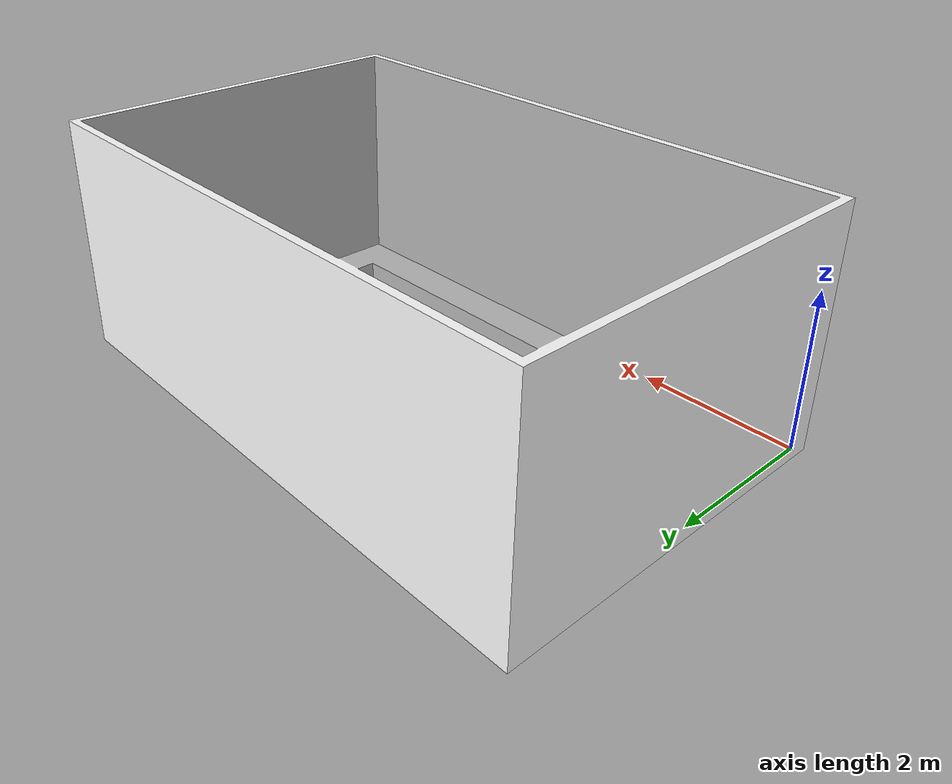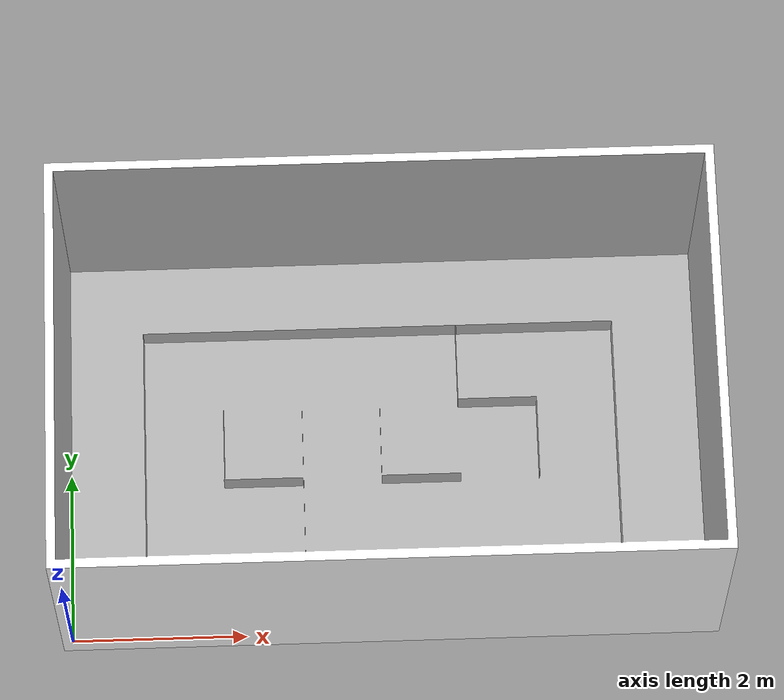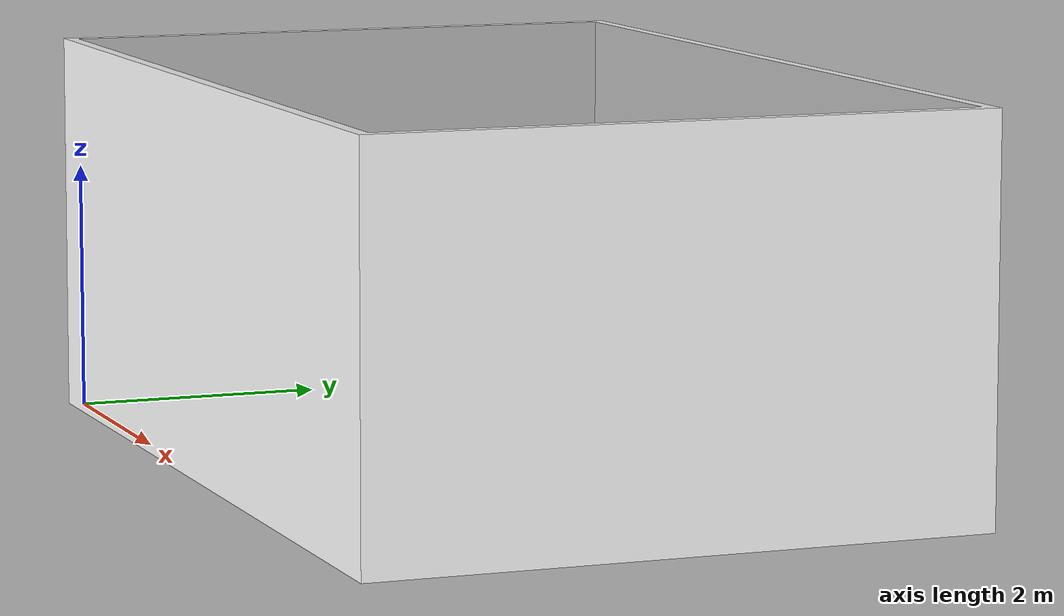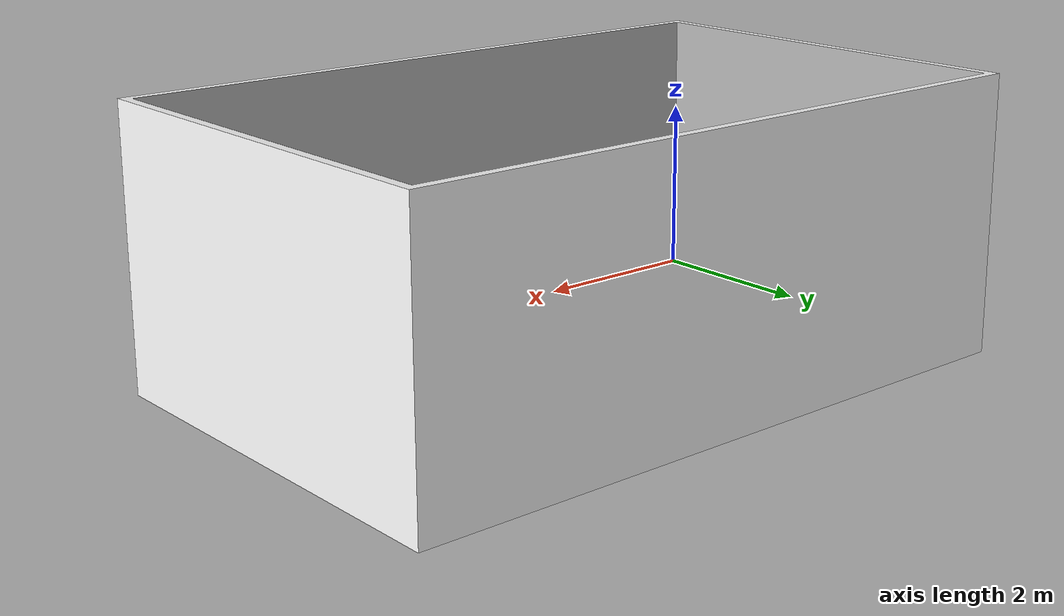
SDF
<?xml version="1.0" ?>
<sdf version="1.6">
  <model name="7785_maze">
    <static>true</static>
    <link name="link">
      <collision name="collision">
        <geometry>
          <mesh>
            <uri>model://7785_maze/meshes/7785_maze.dae</uri>
          </mesh>
        </geometry>
      </collision>
      <visual name="visual">
        <geometry>
          <mesh>
            <uri>model://7785_maze/meshes/7785_maze.dae</uri>
          </mesh>
        </geometry>
      </visual>
    </link>
  </model>
</sdf>
